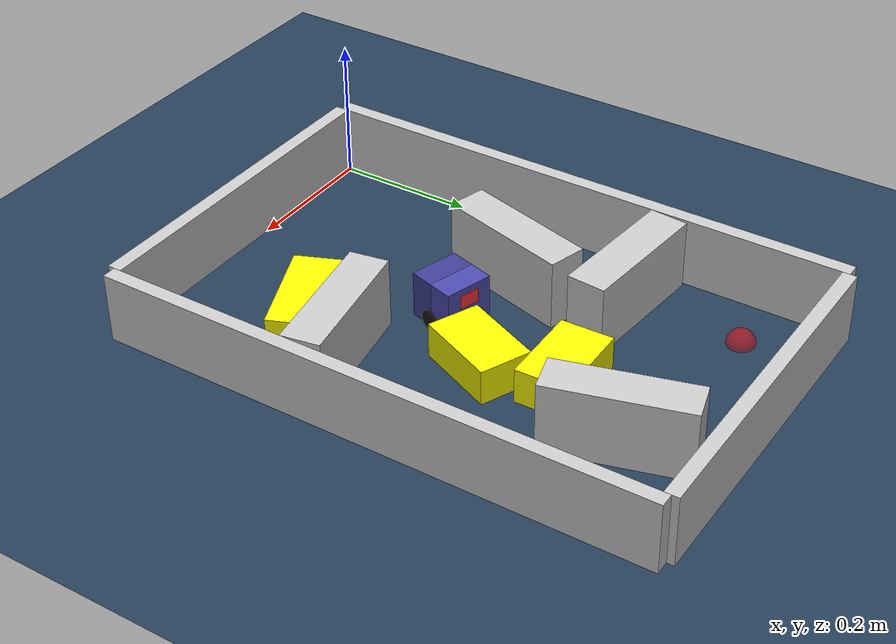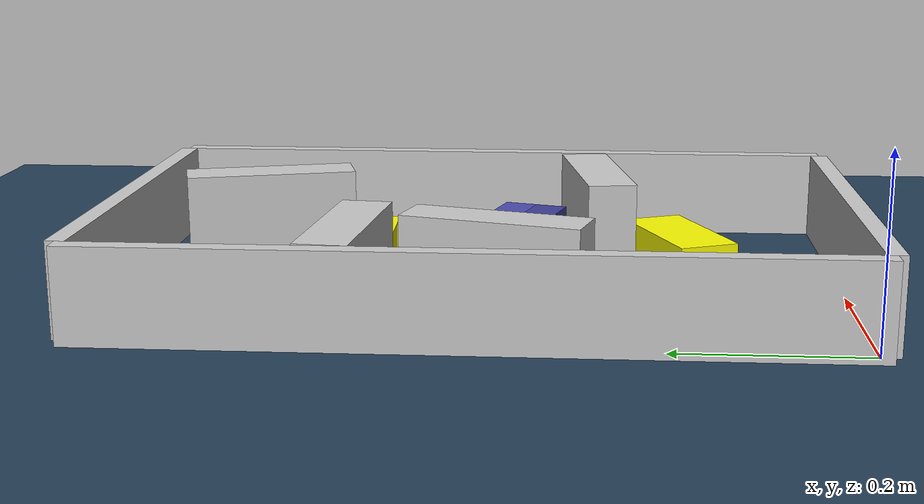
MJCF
<?xml version='1.0' encoding='utf-8'?>
<mujoco model="real_buildable">
  <compiler angle="degree" />
  <option timestep="0.002" integrator="implicitfast" iterations="100" cone="elliptic" />
  <default>
    <geom density="1" />
  </default>
  <asset>
    <texture builtin="gradient" height="3072" rgb1="0.3 0.5 0.7" rgb2="0 0 0" type="skybox" width="512" />
    <texture builtin="checker" height="300" mark="edge" markrgb="0.8 0.8 0.8" name="groundplane" rgb1="0.2 0.3 0.4" rgb2="0.1 0.2 0.3" type="2d" width="300" />
    <material name="groundplane" reflectance="0.2" texrepeat="5 5" texture="groundplane" texuniform="true" />
  </asset>
  <worldbody>
    <light dir="0 0 -1" directional="true" pos="0 0 1.5" />
    <geom name="floor" type="plane" condim="4" friction="0.5 0.005 0.001" material="groundplane" size="0 0 0.05" />
    <body name="walls">
      <geom name="wall_boundary_left" type="box" condim="4" friction="1.0 0.005 0.0001" rgba="0.8 0.8 0.8 1" pos="-0.010000 0.387500 0.050000" euler="0 0 0.000000" size="0.010000 0.397500 0.050000" />
      <geom name="wall_boundary_right" type="box" condim="4" friction="1.0 0.005 0.0001" rgba="0.8 0.8 0.8 1" pos="0.500000 0.387500 0.050000" euler="0 0 0.000000" size="0.010000 0.397500 0.050000" />
      <geom name="wall_boundary_bottom" type="box" condim="4" friction="1.0 0.005 0.0001" rgba="0.8 0.8 0.8 1" pos="0.245000 -0.010000 0.050000" euler="0 0 0.000000" size="0.245000 0.010000 0.050000" />
      <geom name="wall_boundary_top" type="box" condim="4" friction="1.0 0.005 0.0001" rgba="0.8 0.8 0.8 1" pos="0.245000 0.785000 0.050000" euler="0 0 0.000000" size="0.245000 0.010000 0.050000" />
      <geom name="wall_inner_1" type="box" condim="4" friction="1.0 0.005 0.0001" rgba="0.8 0.8 0.8 1" pos="0.389214 0.264573 0.050000" euler="0 0 9.954213" size="0.097500 0.027500 0.050000" />
      <geom name="wall_inner_2" type="box" condim="4" friction="1.0 0.005 0.0001" rgba="0.8 0.8 0.8 1" pos="0.132042 0.369672 0.050000" euler="0 0 74.577875" size="0.097500 0.027500 0.050000" />
      <geom name="wall_inner_3" type="box" condim="4" friction="1.0 0.005 0.0001" rgba="0.8 0.8 0.8 1" pos="0.100000 0.521000 0.050000" euler="0 0 174.900000" size="0.097500 0.027500 0.050000" />
      <geom name="wall_inner_4" type="box" condim="4" friction="1.0 0.005 0.0001" rgba="0.8 0.8 0.8 1" pos="0.354000 0.651000 0.050000" euler="0 0 105.800000" size="0.097500 0.027500 0.050000" />
    </body>
    <body name="car" pos="0.24739819326506787 0.3431544974152767 0.01" quat="0.79928891213636821 0 0 0.60094694852030073">
      <freejoint name="car_freejoint" />
      <inertial pos="0 0 0.0375" mass="0.35" diaginertia="0.000266 0.000266 0.000286" />
      <geom name="front_chassis_collision" type="box" pos="0.0175 0 0.0375" size="0.0175 0.035 0.0325" rgba="0.3 0.3 0.7 1" />
      <geom name="rear_chassis_collision" type="box" pos="-0.0175 0 0.0375" size="0.0175 0.035 0.0325" rgba="0.25 0.25 0.6 1" />
      <geom name="front_marker" type="box" pos="0.034 0 0.0505" size="0.002 0.015 0.01" rgba="1 0.2 0.2 1" contype="0" conaffinity="0" />
      <body name="rear_support_body" pos="-0.03 0 0.0025">
        <joint name="rear_caster_joint" type="ball" damping="0.0001" />
        <inertial pos="0 0 0" mass="0.025" diaginertia="0.000001 0.000001 0.000001" />
        <geom name="rear_support" type="sphere" pos="0 0 0" size="0.0025" friction="0 0 0" rgba="0.7 0.1 0.1 1" />
      </body>
      <body name="front_support_body" pos="0.03 0 0.0025">
        <joint name="front_caster_joint" type="ball" damping="0.0001" />
        <inertial pos="0 0 0" mass="0.025" diaginertia="0.000001 0.000001 0.000001" />
        <geom name="front_support" type="sphere" pos="0 0 0" size="0.0025" friction="0 0 0" rgba="0.1 0.7 0.1 1" />
      </body>
      <body name="left_wheel" pos="0 0.0375 0.015">
        <inertial pos="0 0 0" mass="0.05" diaginertia="0.000003 0.000006 0.000003" />
        <joint name="left_wheel_joint" type="hinge" axis="0 1 0" damping="0.01" armature="0.0001" />
        <geom name="left_wheel_collision" type="cylinder" size="0.015 0.0005" euler="90 0 0" rgba="0.1 0.1 0.1 1" />
      </body>
      <body name="right_wheel" pos="0 -0.0375 0.015">
        <inertial pos="0 0 0" mass="0.05" diaginertia="0.000003 0.000006 0.000003" />
        <joint name="right_wheel_joint" type="hinge" axis="0 1 0" damping="0.01" armature="0.0001" />
        <geom name="right_wheel_collision" type="cylinder" size="0.015 0.0005" euler="90 0 0" rgba="0.1 0.1 0.1 1" />
      </body>
    </body>
    <body name="obstacle_0_movable">
      <geom name="obstacle_0_movable" condim="4" pos="0.3087230348096634 0.42485002431099844 0.025000000000000001" friction="1 0.005 0.0001" rgba="1 1 0 1" size="0.037500 0.060000 0.025000" type="box" mass="0.1" quat="0.20414384981158851 0 0 0.97894090147674573" />
      <joint type="free" />
    </body>
    <body name="obstacle_1_movable">
      <geom name="obstacle_1_movable" condim="4" pos="0.27939347773774353 0.53153987801720726 0.025000000000000001" friction="1 0.005 0.0001" rgba="1 1 0 1" size="0.037500 0.060000 0.025000" type="box" mass="0.1" quat="0.7162031916572984 0 0 -0.69789181701743652" />
      <joint type="free" />
    </body>
    <body name="obstacle_2_movable">
      <geom name="obstacle_2_movable" condim="4" pos="0.33028000000000013 0.16864399999999993 0.02" friction="1 0.005 0.0001" rgba="1 1 0 1" size="0.035000 0.075000 0.020000" type="box" mass="0.1" quat="0.55294471187460548 0 0 0.83321794604407651" />
      <joint type="free" />
    </body>
    <site name="goal" type="sphere" pos="0.080000 0.680000 0.0" size="0.02" rgba="1 0 0 0.5" />
  </worldbody>
  <actuator>
    <velocity name="left_wheel_drive" joint="left_wheel_joint" ctrlrange="-25 25" kv="0.75" forcerange="-0.5 0.5" />
    <velocity name="right_wheel_drive" joint="right_wheel_joint" ctrlrange="-25 25" kv="0.75" forcerange="-0.5 0.5" />
  </actuator>
</mujoco>
